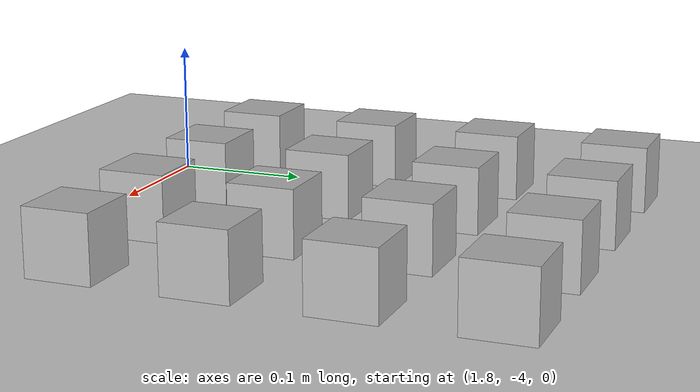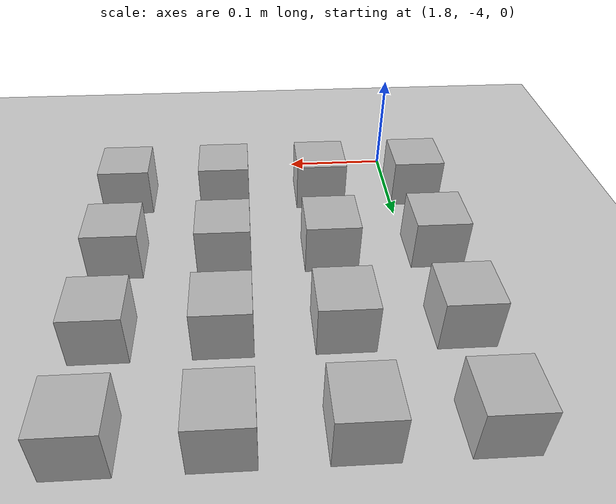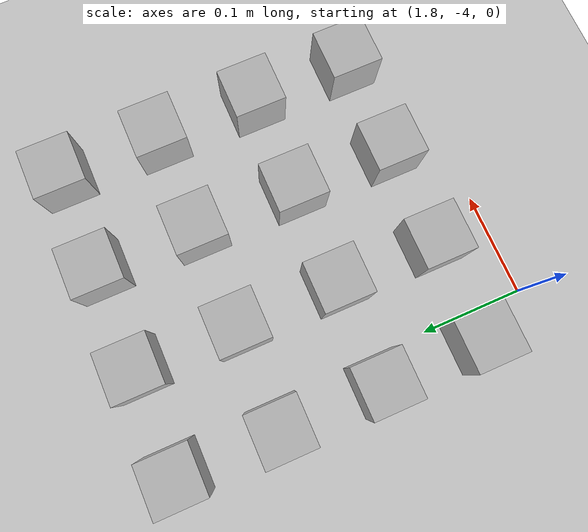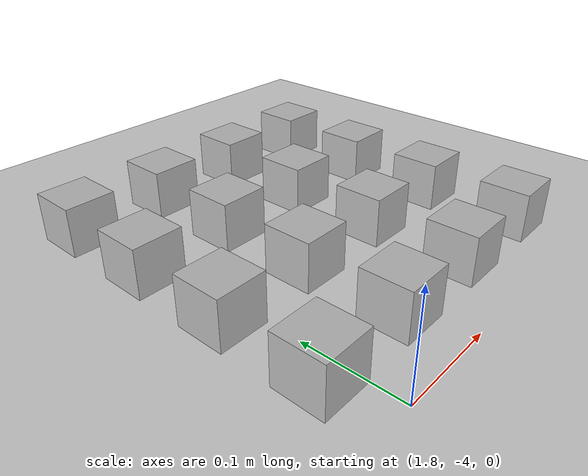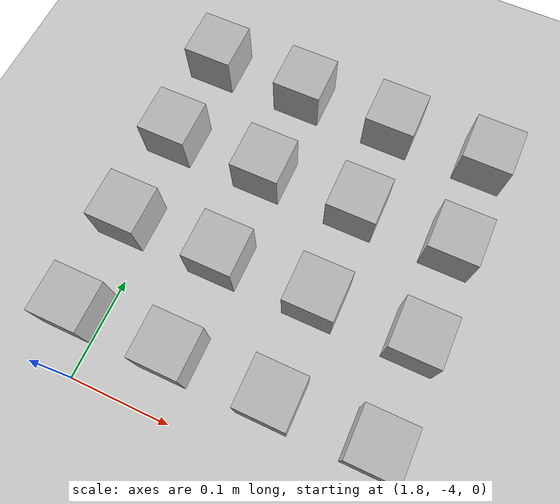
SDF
<sdf version="1.6">
 <world name="default">
  <model name="ground_plane">
   <static>1</static>
   <link name="link">
    <collision name="collision">
     <geometry><plane><normal>0 0 1</normal><size>100 100</size></plane></geometry>
     <surface><friction><ode><mu>100</mu><mu2>50</mu2></ode></friction></surface>
    </collision>
    <visual name="visual">
     <cast_shadows>0</cast_shadows>
     <geometry><plane><normal>0 0 1</normal><size>100 100</size></plane></geometry>
     <material>
      <script><uri>file://media/materials/scripts/gazebo.material</uri><name>Gazebo/Grey</name></script>
     </material>
    </visual>
   </link>
  </model>
  <model name="at48">
   <static>0</static>
   <link name="link">
    <inertial>
     <mass>0.01</mass>
     <inertia><ixx>4e-05</ixx><ixy>0</ixy><ixz>0</ixz><iyy>4e-05</iyy><iyz>0</iyz><izz>4e-05</izz></inertia>
    </inertial>
    <visual name="visual">
     <geometry><box><size>0.05 0.05 0.05</size></box></geometry>
     <material>
      <script>
       <uri>model://at0/materials/scripts</uri>
       <uri>model://at0/materials/textures</uri>
       <name>at0/Diffuse</name>
      </script>
     </material>
    </visual>
    <collision name="collision">
     <geometry><box><size>0.05 0.05 0.05</size></box></geometry>
     <surface><friction><ode><mu>0.8</mu><mu2>0.7</mu2></ode></friction></surface>
    </collision>
   </link>
   <pose>1.77506 -3.94063 0.025 0 -0 0</pose>
  </model>
  <model name="at49">
   <static>0</static>
   <link name="link">
    <inertial>
     <mass>0.01</mass>
     <inertia><ixx>4e-05</ixx><ixy>0</ixy><ixz>0</ixz><iyy>4e-05</iyy><iyz>0</iyz><izz>4e-05</izz></inertia>
    </inertial>
    <visual name="visual">
     <geometry><box><size>0.05 0.05 0.05</size></box></geometry>
     <material>
      <script>
       <uri>model://at0/materials/scripts</uri>
       <uri>model://at0/materials/textures</uri>
       <name>at0/Diffuse</name>
      </script>
     </material>
    </visual>
    <collision name="collision">
     <geometry><box><size>0.05 0.05 0.05</size></box></geometry>
     <surface><friction><ode><mu>0.8</mu><mu2>0.7</mu2></ode></friction></surface>
    </collision>
   </link>
   <pose>1.87506 -3.94063 0.025 0 -0 0</pose>
  </model>
  <model name="at50">
   <static>0</static>
   <link name="link">
    <inertial>
     <mass>0.01</mass>
     <inertia><ixx>4e-05</ixx><ixy>0</ixy><ixz>0</ixz><iyy>4e-05</iyy><iyz>0</iyz><izz>4e-05</izz></inertia>
    </inertial>
    <visual name="visual">
     <geometry><box><size>0.05 0.05 0.05</size></box></geometry>
     <material>
      <script>
       <uri>model://at0/materials/scripts</uri>
       <uri>model://at0/materials/textures</uri>
       <name>at0/Diffuse</name>
      </script>
     </material>
    </visual>
    <collision name="collision">
     <geometry><box><size>0.05 0.05 0.05</size></box></geometry>
     <surface><friction><ode><mu>0.8</mu><mu2>0.7</mu2></ode></friction></surface>
    </collision>
   </link>
   <pose>1.97506 -3.94063 0.025 0 -0 0</pose>
  </model>
  <model name="at51">
   <static>0</static>
   <link name="link">
    <inertial>
     <mass>0.01</mass>
     <inertia><ixx>4e-05</ixx><ixy>0</ixy><ixz>0</ixz><iyy>4e-05</iyy><iyz>0</iyz><izz>4e-05</izz></inertia>
    </inertial>
    <visual name="visual">
     <geometry><box><size>0.05 0.05 0.05</size></box></geometry>
     <material>
      <script>
       <uri>model://at0/materials/scripts</uri>
       <uri>model://at0/materials/textures</uri>
       <name>at0/Diffuse</name>
      </script>
     </material>
    </visual>
    <collision name="collision">
     <geometry><box><size>0.05 0.05 0.05</size></box></geometry>
     <surface><friction><ode><mu>0.8</mu><mu2>0.7</mu2></ode></friction></surface>
    </collision>
   </link>
   <pose>2.07506 -3.94063 0.025 0 -0 0</pose>
  </model>
  <model name="at52">
   <static>0</static>
   <link name="link">
    <inertial>
     <mass>0.01</mass>
     <inertia><ixx>4e-05</ixx><ixy>0</ixy><ixz>0</ixz><iyy>4e-05</iyy><iyz>0</iyz><izz>4e-05</izz></inertia>
    </inertial>
    <visual name="visual">
     <geometry><box><size>0.05 0.05 0.05</size></box></geometry>
     <material>
      <script>
       <uri>model://at0/materials/scripts</uri>
       <uri>model://at0/materials/textures</uri>
       <name>at0/Diffuse</name>
      </script>
     </material>
    </visual>
    <collision name="collision">
     <geometry><box><size>0.05 0.05 0.05</size></box></geometry>
     <surface><friction><ode><mu>0.8</mu><mu2>0.7</mu2></ode></friction></surface>
    </collision>
   </link>
   <pose>1.77506 -3.84063 0.025 0 -0 0</pose>
  </model>
  <model name="at53">
   <static>0</static>
   <link name="link">
    <inertial>
     <mass>0.01</mass>
     <inertia><ixx>4e-05</ixx><ixy>0</ixy><ixz>0</ixz><iyy>4e-05</iyy><iyz>0</iyz><izz>4e-05</izz></inertia>
    </inertial>
    <visual name="visual">
     <geometry><box><size>0.05 0.05 0.05</size></box></geometry>
     <material>
      <script>
       <uri>model://at0/materials/scripts</uri>
       <uri>model://at0/materials/textures</uri>
       <name>at0/Diffuse</name>
      </script>
     </material>
    </visual>
    <collision name="collision">
     <geometry><box><size>0.05 0.05 0.05</size></box></geometry>
     <surface><friction><ode><mu>0.8</mu><mu2>0.7</mu2></ode></friction></surface>
    </collision>
   </link>
   <pose>1.87506 -3.84063 0.025 0 -0 0</pose>
  </model>
  <model name="at54">
   <static>0</static>
   <link name="link">
    <inertial>
     <mass>0.01</mass>
     <inertia><ixx>4e-05</ixx><ixy>0</ixy><ixz>0</ixz><iyy>4e-05</iyy><iyz>0</iyz><izz>4e-05</izz></inertia>
    </inertial>
    <visual name="visual">
     <geometry><box><size>0.05 0.05 0.05</size></box></geometry>
     <material>
      <script>
       <uri>model://at0/materials/scripts</uri>
       <uri>model://at0/materials/textures</uri>
       <name>at0/Diffuse</name>
      </script>
     </material>
    </visual>
    <collision name="collision">
     <geometry><box><size>0.05 0.05 0.05</size></box></geometry>
     <surface><friction><ode><mu>0.8</mu><mu2>0.7</mu2></ode></friction></surface>
    </collision>
   </link>
   <pose>1.97506 -3.84063 0.025 0 -0 0</pose>
  </model>
  <model name="at55">
   <static>0</static>
   <link name="link">
    <inertial>
     <mass>0.01</mass>
     <inertia><ixx>4e-05</ixx><ixy>0</ixy><ixz>0</ixz><iyy>4e-05</iyy><iyz>0</iyz><izz>4e-05</izz></inertia>
    </inertial>
    <visual name="visual">
     <geometry><box><size>0.05 0.05 0.05</size></box></geometry>
     <material>
      <script>
       <uri>model://at0/materials/scripts</uri>
       <uri>model://at0/materials/textures</uri>
       <name>at0/Diffuse</name>
      </script>
     </material>
    </visual>
    <collision name="collision">
     <geometry><box><size>0.05 0.05 0.05</size></box></geometry>
     <surface><friction><ode><mu>0.8</mu><mu2>0.7</mu2></ode></friction></surface>
    </collision>
   </link>
   <pose>2.07506 -3.84063 0.025 0 -0 0</pose>
  </model>
  <model name="at56">
   <static>0</static>
   <link name="link">
    <inertial>
     <mass>0.01</mass>
     <inertia><ixx>4e-05</ixx><ixy>0</ixy><ixz>0</ixz><iyy>4e-05</iyy><iyz>0</iyz><izz>4e-05</izz></inertia>
    </inertial>
    <visual name="visual">
     <geometry><box><size>0.05 0.05 0.05</size></box></geometry>
     <material>
      <script>
       <uri>model://at0/materials/scripts</uri>
       <uri>model://at0/materials/textures</uri>
       <name>at0/Diffuse</name>
      </script>
     </material>
    </visual>
    <collision name="collision">
     <geometry><box><size>0.05 0.05 0.05</size></box></geometry>
     <surface><friction><ode><mu>0.8</mu><mu2>0.7</mu2></ode></friction></surface>
    </collision>
   </link>
   <pose>1.77506 -3.74063 0.025 0 -0 0</pose>
  </model>
  <model name="at57">
   <static>0</static>
   <link name="link">
    <inertial>
     <mass>0.01</mass>
     <inertia><ixx>4e-05</ixx><ixy>0</ixy><ixz>0</ixz><iyy>4e-05</iyy><iyz>0</iyz><izz>4e-05</izz></inertia>
    </inertial>
    <visual name="visual">
     <geometry><box><size>0.05 0.05 0.05</size></box></geometry>
     <material>
      <script>
       <uri>model://at0/materials/scripts</uri>
       <uri>model://at0/materials/textures</uri>
       <name>at0/Diffuse</name>
      </script>
     </material>
    </visual>
    <collision name="collision">
     <geometry><box><size>0.05 0.05 0.05</size></box></geometry>
     <surface><friction><ode><mu>0.8</mu><mu2>0.7</mu2></ode></friction></surface>
    </collision>
   </link>
   <pose>1.87506 -3.74063 0.025 0 -0 0</pose>
  </model>
  <model name="at58">
   <static>0</static>
   <link name="link">
    <inertial>
     <mass>0.01</mass>
     <inertia><ixx>4e-05</ixx><ixy>0</ixy><ixz>0</ixz><iyy>4e-05</iyy><iyz>0</iyz><izz>4e-05</izz></inertia>
    </inertial>
    <visual name="visual">
     <geometry><box><size>0.05 0.05 0.05</size></box></geometry>
     <material>
      <script>
       <uri>model://at0/materials/scripts</uri>
       <uri>model://at0/materials/textures</uri>
       <name>at0/Diffuse</name>
      </script>
     </material>
    </visual>
    <collision name="collision">
     <geometry><box><size>0.05 0.05 0.05</size></box></geometry>
     <surface><friction><ode><mu>0.8</mu><mu2>0.7</mu2></ode></friction></surface>
    </collision>
   </link>
   <pose>1.97506 -3.74063 0.025 0 -0 0</pose>
  </model>
  <model name="at59">
   <static>0</static>
   <link name="link">
    <inertial>
     <mass>0.01</mass>
     <inertia><ixx>4e-05</ixx><ixy>0</ixy><ixz>0</ixz><iyy>4e-05</iyy><iyz>0</iyz><izz>4e-05</izz></inertia>
    </inertial>
    <visual name="visual">
     <geometry><box><size>0.05 0.05 0.05</size></box></geometry>
     <material>
      <script>
       <uri>model://at0/materials/scripts</uri>
       <uri>model://at0/materials/textures</uri>
       <name>at0/Diffuse</name>
      </script>
     </material>
    </visual>
    <collision name="collision">
     <geometry><box><size>0.05 0.05 0.05</size></box></geometry>
     <surface><friction><ode><mu>0.8</mu><mu2>0.7</mu2></ode></friction></surface>
    </collision>
   </link>
   <pose>2.07506 -3.74063 0.025 0 -0 0</pose>
  </model>
  <model name="at60">
   <static>0</static>
   <link name="link">
    <inertial>
     <mass>0.01</mass>
     <inertia><ixx>4e-05</ixx><ixy>0</ixy><ixz>0</ixz><iyy>4e-05</iyy><iyz>0</iyz><izz>4e-05</izz></inertia>
    </inertial>
    <visual name="visual">
     <geometry><box><size>0.05 0.05 0.05</size></box></geometry>
     <material>
      <script>
       <uri>model://at0/materials/scripts</uri>
       <uri>model://at0/materials/textures</uri>
       <name>at0/Diffuse</name>
      </script>
     </material>
    </visual>
    <collision name="collision">
     <geometry><box><size>0.05 0.05 0.05</size></box></geometry>
     <surface><friction><ode><mu>0.8</mu><mu2>0.7</mu2></ode></friction></surface>
    </collision>
   </link>
   <pose>1.77506 -3.64063 0.025 0 -0 0</pose>
  </model>
  <model name="at61">
   <static>0</static>
   <link name="link">
    <inertial>
     <mass>0.01</mass>
     <inertia><ixx>4e-05</ixx><ixy>0</ixy><ixz>0</ixz><iyy>4e-05</iyy><iyz>0</iyz><izz>4e-05</izz></inertia>
    </inertial>
    <visual name="visual">
     <geometry><box><size>0.05 0.05 0.05</size></box></geometry>
     <material>
      <script>
       <uri>model://at0/materials/scripts</uri>
       <uri>model://at0/materials/textures</uri>
       <name>at0/Diffuse</name>
      </script>
     </material>
    </visual>
    <collision name="collision">
     <geometry><box><size>0.05 0.05 0.05</size></box></geometry>
     <surface><friction><ode><mu>0.8</mu><mu2>0.7</mu2></ode></friction></surface>
    </collision>
   </link>
   <pose>1.87506 -3.64063 0.025 0 -0 0</pose>
  </model>
  <model name="at62">
   <static>0</static>
   <link name="link">
    <inertial>
     <mass>0.01</mass>
     <inertia><ixx>4e-05</ixx><ixy>0</ixy><ixz>0</ixz><iyy>4e-05</iyy><iyz>0</iyz><izz>4e-05</izz></inertia>
    </inertial>
    <visual name="visual">
     <geometry><box><size>0.05 0.05 0.05</size></box></geometry>
     <material>
      <script>
       <uri>model://at0/materials/scripts</uri>
       <uri>model://at0/materials/textures</uri>
       <name>at0/Diffuse</name>
      </script>
     </material>
    </visual>
    <collision name="collision">
     <geometry><box><size>0.05 0.05 0.05</size></box></geometry>
     <surface><friction><ode><mu>0.8</mu><mu2>0.7</mu2></ode></friction></surface>
    </collision>
   </link>
   <pose>1.97506 -3.64063 0.025 0 -0 0</pose>
  </model>
  <model name="at63">
   <static>0</static>
   <link name="link">
    <inertial>
     <mass>0.01</mass>
     <inertia><ixx>4e-05</ixx><ixy>0</ixy><ixz>0</ixz><iyy>4e-05</iyy><iyz>0</iyz><izz>4e-05</izz></inertia>
    </inertial>
    <visual name="visual">
     <geometry><box><size>0.05 0.05 0.05</size></box></geometry>
     <material>
      <script>
       <uri>model://at0/materials/scripts</uri>
       <uri>model://at0/materials/textures</uri>
       <name>at0/Diffuse</name>
      </script>
     </material>
    </visual>
    <collision name="collision">
     <geometry><box><size>0.05 0.05 0.05</size></box></geometry>
     <surface><friction><ode><mu>0.8</mu><mu2>0.7</mu2></ode></friction></surface>
    </collision>
   </link>
   <pose>2.07506 -3.64063 0.025 0 -0 0</pose>
  </model>
 </world>
</sdf>
